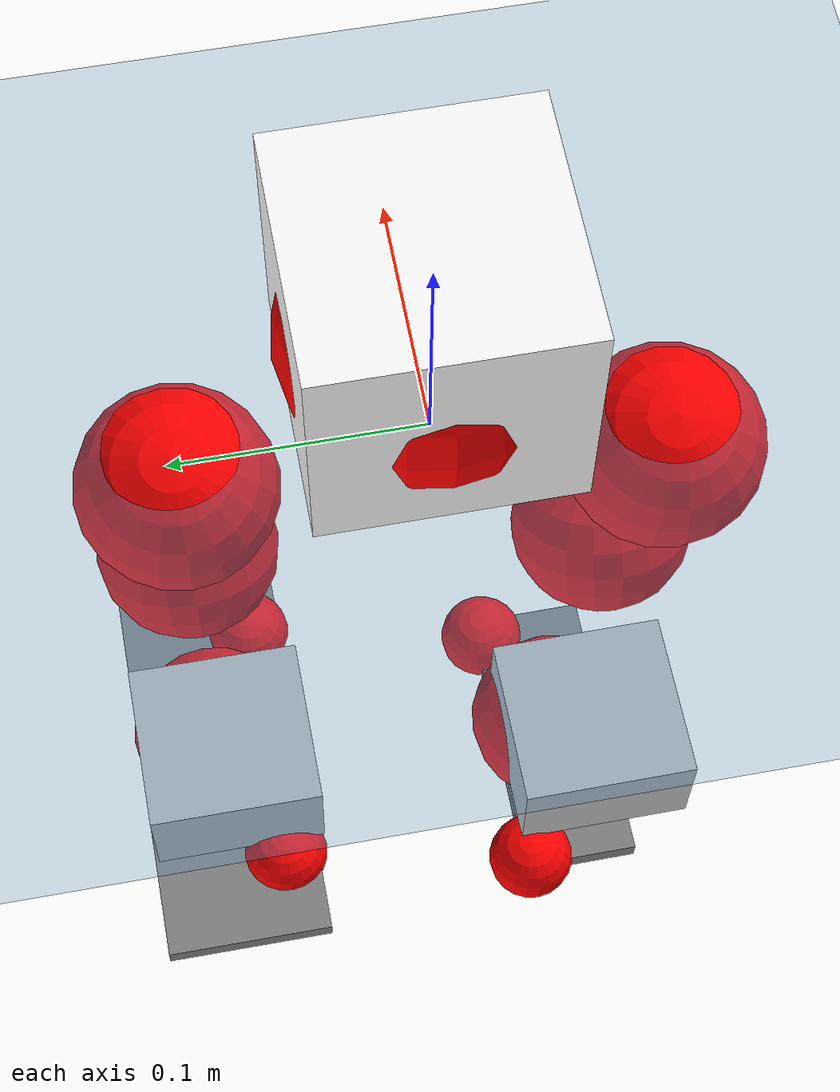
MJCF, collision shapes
<mujoco model="pi_12dof_release_v1">
  <compiler angle="radian" assetdir="assets" balanceinertia="true" inertiafromgeom="false"/>

  <option timestep="0.005" density="1.2" viscosity="2e-05"/>

  <size nkey="1"/>

  <visual>
    <quality shadowsize="8192"/>
    <map shadowclip="0.5"/>
  </visual>

  <default>
    <default class="/">
      <joint armature="0.01" damping="0.01" frictionloss="0.01"/>
      <geom contype="0" conaffinity="0" group="1" solref="-1000 -80"/>
      <site size="0.01 0.005 0.005" group="5"/>
      <general forcelimited="true" biastype="affine" gainprm="20" biasprm="0 -20 -0.5"/>
      <default class="foot">
        <geom size="0.0845 0.036 0.005" type="box" condim="6" group="4" priority="1" friction="0.9 0.2 0.2" solimp="0.015 1 0.005"/>
      </default>
      <default class="reward_collision_sphere">
        <geom group="5" rgba="1 0 0 1"/>
      </default>
    </default>
  </default>

  <asset>
    <texture type="skybox" colorspace="auto" name="//unnamed_texture_0" builtin="gradient" rgb1="0.95 0.95 0.95" rgb2="0.95 0.95 0.95" width="100" height="600"/>
    <texture type="2d" colorspace="auto" name="texplane" builtin="checker" rgb1="0.345 0.575 0.748" rgb2="0.345 0.575 0.748" markrgb="1 1 1" width="512" height="512"/>
    <material name="MatPlane" class="/" texture="texplane" texuniform="true" texrepeat="2 2" specular="0.9"/>
    <mesh name="baselink_1" class="/" file="baselink_1.STL"/>
    <mesh name="r_hip_pitch_link" class="/" file="r_hip_pitch_link.STL"/>
    <mesh name="r_hip_roll_link" class="/" file="r_hip_roll_link.STL"/>
    <mesh name="r_thigh_link" class="/" file="r_thigh_link.STL"/>
    <mesh name="r_calf_link" class="/" file="r_calf_link.STL"/>
    <mesh name="r_ankle_pitch_link" class="/" file="r_ankle_pitch_link.STL"/>
    <mesh name="r_ankle_roll_link" class="/" file="r_ankle_roll_link.STL"/>
    <mesh name="l_hip_pitch_link" class="/" file="l_hip_pitch_link.STL"/>
    <mesh name="l_hip_roll_link" class="/" file="l_hip_roll_link.STL"/>
    <mesh name="l_thigh_link" class="/" file="l_thigh_link.STL"/>
    <mesh name="l_calf_link" class="/" file="l_calf_link.STL"/>
    <mesh name="l_ankle_pitch_link" class="/" file="l_ankle_pitch_link.STL"/>
    <mesh name="l_ankle_roll_link" class="/" file="l_ankle_roll_link.STL"/>
  </asset>

  <worldbody>
    <geom name="floor" class="/" size="100 100 0.125" type="plane" group="0" material="MatPlane"/>
    <light name="toplight_shadow" class="/" pos="0 0 5" dir="0.0990148 0.0990148 -0.990148" type="directional" ambient="0.04 0.04 0.04" diffuse="0.55 0.55 0.55" specular="0.12 0.12 0.12"/>
    <light name="toplight_fill" class="/" pos="0 0 5" dir="0.0990148 0.0990148 -0.990148" type="directional" castshadow="false" ambient="0.04 0.04 0.04" diffuse="0.3 0.3 0.3" specular="0.08 0.08 0.08"/>
    <body name="trunk" pos="-0.000249865 0.00163856 -0.0017059" quat="1 -0.000832597 -0.00012563 -8.19404e-05">
      <inertial pos="0.00291038 0.00581218 0.0358795" quat="0.69681 0.00990552 0.00992044 0.717119" mass="2.29696" diaginertia="0.00653445 0.0234796 0.0030626"/>
      <joint name="//unnamed_joint_0" type="free"/>
      <geom name="//unnamed_geom_1" class="/" type="mesh" density="0" rgba="1 1 1 1" mesh="baselink_1"/>
      <geom name="//unnamed_geom_2" class="/" size="0.0504394 0.0504394 0.0504394" pos="0 0 0.0748407" type="box" rgba="1 1 1 1"/>
      <geom name="//unnamed_geom_3" class="reward_collision_sphere" size="0.0554833" pos="0 0 0.0654856"/>
      <site name="imu" class="/" pos="-0.0105387 0.00778164 0.00772568" size="0.0100879"/>
      <camera name="track" class="/" pos="0 -2.38941 0" quat="0.707107 0.707107 0 0" mode="trackcom"/>
      <camera name="ego_camera" class="/" pos="0.067211 0 0.168392" quat="-0.5 -0.5 0.5 0.5"/>
      <body name="r_hip_pitch_link" pos="-0.00261891 -0.0256118 -0.0302343" quat="0.992198 0.000373256 -0.124667 -0.000486683">
        <inertial pos="0.00139238 -0.0627409 0.00322143" quat="-0.00355327 0.695057 -0.0588593 0.716533" mass="0.394233" diaginertia="6.31613e-05 0.000244236 6.01848e-05"/>
        <joint name="r_hip_pitch_joint" class="/" pos="0 0 0" axis="-0.0108468 -0.999837 -0.0144355" stiffness="0.00583249" range="-1.77071 1.2376" armature="0.00908136" damping="0" frictionloss="0.00739183"/>
        <geom name="//unnamed_geom_4" class="/" type="mesh" density="0" rgba="0.75294 0.75294 0.75294 1" mesh="r_hip_pitch_link"/>
        <geom name="//unnamed_geom_5" class="/" size="0.000504394 0.000504394 0.000504394" type="box" rgba="0.75294 0.75294 0.75294 1"/>
        <body name="r_hip_roll_link" pos="-0.00426159 -0.067401 0.00175582" quat="0.999994 0.00319762 0.000237196 0.00103632">
          <inertial pos="0.00225301 -0.00751265 -0.0612353" quat="0.702733 -0.0803171 -0.0845391 0.701833" mass="0.396911" diaginertia="0.00020339 0.000624289 9.15081e-05"/>
          <joint name="r_hip_roll_joint" class="/" pos="0 0 0" axis="-1 0.000750344 -0.000123188" stiffness="0.00460821" range="-0.122718 0.468626" armature="0.0083926" damping="0" frictionloss="0.00903434"/>
          <geom name="//unnamed_geom_6" class="/" type="mesh" density="0" rgba="0.75294 0.75294 0.75294 1" mesh="r_hip_roll_link"/>
          <geom name="//unnamed_geom_7" class="/" size="0.000504394 0.000504394 0.000504394" type="box" rgba="0.75294 0.75294 0.75294 1"/>
          <geom name="//unnamed_geom_8" class="reward_collision_sphere" size="0.0403515"/>
          <body name="r_thigh_link" pos="-0.00373951 0.00514735 -0.0627175" quat="0.999999 -0.00067169 0.00131642 0.000833092">
            <inertial pos="0.00491553 0.00283832 -0.0413164" quat="0.74154 0.670905 -0.00188927 -0.000531698" mass="0.119618" diaginertia="7.29512e-05 0.000218737 4.10273e-05"/>
            <joint name="r_thigh_joint" class="/" pos="0 0 0" axis="-0.0207696 -0.00502532 -0.999772" stiffness="0.0242798" range="-0.181362 0.712765" armature="0.00808041" damping="0.0376178" frictionloss="0.00716791"/>
            <geom name="//unnamed_geom_9" class="/" type="mesh" density="0" rgba="0.75294 0.75294 0.75294 1" mesh="r_thigh_link"/>
            <geom name="//unnamed_geom_10" class="/" size="0.000504394 0.000504394 0.000504394" type="box" rgba="0.75294 0.75294 0.75294 1"/>
            <body name="r_calf_link" pos="0.00618342 0.00169883 -0.0655104" quat="0.947484 -0.000532474 0.319803 0.000758252">
              <inertial pos="-0.00367484 -8.42183e-05 -0.0654361" quat="0.999809 -0.00208055 -0.00687615 -0.0181539" mass="0.828065" diaginertia="0.00209999 0.0085079 0.000127981"/>
              <joint name="r_calf_joint" class="/" pos="0 0 0" axis="-0.0110152 -0.999428 0.031978" stiffness="0.00959759" range="-1.6463 0.600269" armature="0.00984665" damping="0" frictionloss="0.00758158"/>
              <geom name="//unnamed_geom_11" class="/" type="mesh" density="0" rgba="0.75294 0.75294 0.75294 1" mesh="r_calf_link"/>
              <geom name="//unnamed_geom_12" class="/" size="0.000504394 0.000504394 0.000504394" type="box" rgba="0.75294 0.75294 0.75294 1"/>
              <geom name="//unnamed_geom_13" class="reward_collision_sphere" size="0.0403515"/>
              <body name="r_ankle_pitch_link" pos="-0.000816892 0.00747416 -0.126943" quat="0.980095 -4.87477e-05 -0.19853 5.14112e-05">
                <inertial pos="0.00401008 0.00560656 -0.00529241" quat="0.00450237 0.702947 -0.00468634 0.711212" mass="0.186439" diaginertia="0.000183114 0.000546451 8.68809e-05"/>
                <joint name="r_ankle_pitch_joint" class="/" pos="0 0 0" axis="-0.00410461 -0.999929 0.0111926" range="-1.26361 0.605257" armature="0.00833263" damping="0.0143058" frictionloss="0.00779803"/>
                <geom name="//unnamed_geom_14" class="/" type="mesh" density="0" rgba="0.75294 0.75294 0.75294 1" mesh="r_ankle_pitch_link"/>
                <geom name="//unnamed_geom_15" class="/" size="0.0393427 0.0403515 0.0252197" type="box" rgba="0.75294 0.75294 0.75294 1"/>
                <body name="r_ankle_roll_link" pos="0.0640783 0.0121766 -0.00491086" quat="1 -0.000604613 0.000705861 -0.000291293">
                  <inertial pos="-0.0204184 -0.00120524 -0.0119001" quat="0.557297 0.433686 0.434521 0.559043" mass="0.48854" diaginertia="0.000592792 0.00224625 0.00018869"/>
                  <joint name="r_ankle_roll_joint" class="/" pos="0 0 0" axis="-0.999283 -0.0285653 -0.0248392" range="-0.28462 0.0884878" armature="0.00900355" damping="0" frictionloss="0.0109288"/>
                  <geom name="//unnamed_geom_16" class="/" type="mesh" density="0" rgba="0.75294 0.75294 0.75294 1" mesh="r_ankle_roll_link"/>
                  <geom name="//unnamed_geom_17" class="/" type="mesh" rgba="0.75294 0.75294 0.75294 1" mesh="r_ankle_roll_link"/>
                  <geom name="right_foot" class="foot" size="0.0669495 0.0270188 0.00489605" pos="-0.0457034 0 -0.0411624"/>
                  <geom name="//unnamed_geom_19" class="reward_collision_sphere" size="0.0403515" pos="-0.0448073 0 -0.0187102"/>
                  <geom name="//unnamed_geom_20" class="reward_collision_sphere" size="0.0201757" pos="0.0134422 0.0238941 -0.0374204"/>
                  <geom name="//unnamed_geom_21" class="reward_collision_sphere" size="0.0201757" pos="-0.107538 0.0238941 -0.0374204"/>
                  <site name="right_foot" class="foot" pos="-0.0457034 0 -0.0411624" size="0.0100879"/>
                </body>
              </body>
            </body>
          </body>
        </body>
      </body>
      <body name="l_hip_pitch_link" pos="0.00283225 0.0282834 -0.0330881" quat="0.992127 0.000273087 -0.125237 -0.000585796">
        <inertial pos="0.0034492 0.0621882 -0.00111379" quat="-0.0440762 0.704388 0.0202522 0.708156" mass="0.428417" diaginertia="7.10703e-05 0.000252136 7.06921e-05"/>
        <joint name="l_hip_pitch_joint" class="/" pos="0 0 0" axis="0.00110005 0.999981 -0.00612294" range="-1.19078 1.67064" armature="0.00964618" damping="0.0228746" frictionloss="0.0101941"/>
        <geom name="//unnamed_geom_22" class="/" type="mesh" density="0" rgba="0.75294 0.75294 0.75294 1" mesh="l_hip_pitch_link"/>
        <geom name="//unnamed_geom_23" class="/" size="0.000504394 0.000504394 0.000504394" type="box" rgba="0.75294 0.75294 0.75294 1"/>
        <body name="l_hip_roll_link" pos="0.00585893 0.0675635 0.00295296" quat="0.999997 0.00239073 0.000434501 -0.00102164">
          <inertial pos="0.00440612 -0.00700292 -0.0560651" quat="0.691256 -0.0785456 -0.0865416 0.713097" mass="0.430786" diaginertia="0.000194204 0.000673006 8.72348e-05"/>
          <joint name="l_hip_roll_joint" class="/" pos="0 0 0" axis="-0.999944 0.00937769 -0.00496891" stiffness="0.000231534" range="-0.512027 0.136269" armature="0.00699423" damping="0.00265163" frictionloss="0.0103341"/>
          <geom name="//unnamed_geom_24" class="/" type="mesh" density="0" rgba="0.75294 0.75294 0.75294 1" mesh="l_hip_roll_link"/>
          <geom name="//unnamed_geom_25" class="/" size="0.000504394 0.000504394 0.000504394" type="box" rgba="0.75294 0.75294 0.75294 1"/>
          <geom name="//unnamed_geom_26" class="reward_collision_sphere" size="0.0403515"/>
          <body name="l_thigh_link" pos="0.000422561 -0.00194278 -0.0668001" quat="1 2.20145e-05 0.00020304 -2.88512e-05">
            <inertial pos="0.00171573 -0.00489823 -0.0484123" quat="0.676031 0.736824 0.0064333 -0.00551871" mass="0.116523" diaginertia="7.63833e-05 0.000244295 4.42944e-05"/>
            <joint name="l_thigh_joint" class="/" pos="0 0 0" axis="-0.00305859 -0.00459023 -0.999985" range="-0.57517 0.327993" armature="0.0103038" damping="0.0223603" frictionloss="0.010878"/>
            <geom name="//unnamed_geom_27" class="/" type="mesh" density="0" rgba="0.75294 0.75294 0.75294 1" mesh="l_thigh_link"/>
            <geom name="//unnamed_geom_28" class="/" size="0.000504394 0.000504394 0.000504394" type="box" rgba="0.75294 0.75294 0.75294 1"/>
            <body name="l_calf_link" pos="0.00625404 0.00242034 -0.0634918" quat="0.947857 0.00273211 0.318676 0.00216574">
              <inertial pos="0.00244424 0.00223 -0.0700267" quat="0.999984 0.00316727 0.000283839 0.00467673" mass="0.839407" diaginertia="0.00204106 0.00869417 0.000113597"/>
              <joint name="l_calf_joint" class="/" pos="0 0 0" axis="0.00393249 0.999992 0.000681628" stiffness="0.0320404" range="-0.728183 1.62679" armature="0.00979948" damping="0.00805376" frictionloss="0.0110445"/>
              <geom name="//unnamed_geom_29" class="/" type="mesh" density="0" rgba="0.75294 0.75294 0.75294 1" mesh="l_calf_link"/>
              <geom name="//unnamed_geom_30" class="/" size="0.000504394 0.000504394 0.000504394" type="box" rgba="0.75294 0.75294 0.75294 1"/>
              <geom name="//unnamed_geom_31" class="reward_collision_sphere" size="0.0403515"/>
              <body name="l_ankle_pitch_link" pos="0.00178404 -0.00268348 -0.131901" quat="0.980001 -0.000216628 -0.198992 0.000141687">
                <inertial pos="0.00331524 0.0015399 -0.00328162" quat="-0.0130067 0.703909 0.00366011 0.710162" mass="0.189684" diaginertia="0.00017772 0.000541927 8.98557e-05"/>
                <joint name="l_ankle_pitch_joint" class="/" pos="0 0 0" axis="-0.00135202 0.999947 -0.0102054" range="-0.571323 1.29854" armature="0.012214" damping="0" frictionloss="0.0106524"/>
                <geom name="//unnamed_geom_32" class="/" type="mesh" density="0" rgba="0.75294 0.75294 0.75294 1" mesh="l_ankle_pitch_link"/>
                <geom name="//unnamed_geom_33" class="/" size="0.0393427 0.0403515 0.0252197" type="box" rgba="0.75294 0.75294 0.75294 1"/>
                <body name="l_ankle_roll_link" pos="0.0664396 0.00309824 0.000245065" quat="1 -0.000646703 0.000323387 -0.000212415">
                  <inertial pos="-0.0212178 0.001141 -0.0149998" quat="0.557733 0.431763 0.435601 0.559255" mass="0.517442" diaginertia="0.000663974 0.00249504 0.000196118"/>
                  <joint name="l_ankle_roll_joint" class="/" pos="0 0 0" axis="-0.999993 -0.00187724 0.00336556" range="-0.277136 0.156721" armature="0.00899596" damping="0.0319293" frictionloss="0.0094539"/>
                  <geom name="//unnamed_geom_34" class="/" type="mesh" density="0" rgba="0.75294 0.75294 0.75294 1" mesh="l_ankle_roll_link"/>
                  <geom name="//unnamed_geom_35" class="/" type="mesh" rgba="0.75294 0.75294 0.75294 1" mesh="l_ankle_roll_link"/>
                  <geom name="left_foot" class="foot" size="0.103558 0.039421 0.00478985" pos="-0.0457034 0 -0.0411624"/>
                  <geom name="//unnamed_geom_37" class="reward_collision_sphere" size="0.0403515" pos="-0.0448073 0 -0.0187102"/>
                  <geom name="//unnamed_geom_38" class="reward_collision_sphere" size="0.0201757" pos="0.0134422 -0.0238941 -0.0374204"/>
                  <geom name="//unnamed_geom_39" class="reward_collision_sphere" size="0.0201757" pos="-0.107538 -0.0238941 -0.0374204"/>
                  <site name="left_foot" class="foot" pos="-0.0457034 0 -0.0411624" size="0.0100879"/>
                </body>
              </body>
            </body>
          </body>
        </body>
      </body>
    </body>
  </worldbody>

  <contact>
    <pair class="/" geom1="floor" geom2="right_foot" name="//unnamed_contact_1"/>
    <pair class="/" geom1="floor" geom2="left_foot" name="//unnamed_contact_0"/>
  </contact>

  <actuator>
    <general name="r_hip_pitch_joint" class="/" joint="r_hip_pitch_joint" forcerange="-20.549 20.549" gainprm="20.059" biasprm="0 -20.059 -0.544547"/>
    <general name="r_hip_roll_joint" class="/" joint="r_hip_roll_joint" forcerange="-15.9924 15.9924" gainprm="20.059" biasprm="0 -20.059 -0.544547"/>
    <general name="r_thigh_joint" class="/" joint="r_thigh_joint" forcerange="-20.7905 20.7905" gainprm="20.059" biasprm="0 -20.059 -0.544547"/>
    <general name="r_calf_joint" class="/" joint="r_calf_joint" forcerange="-22.4835 22.4835" gainprm="20.059" biasprm="0 -20.059 -0.544547"/>
    <general name="r_ankle_pitch_joint" class="/" joint="r_ankle_pitch_joint" forcerange="-21.5171 21.5171" gainprm="20.059" biasprm="0 -20.059 -0.544547"/>
    <general name="r_ankle_roll_joint" class="/" joint="r_ankle_roll_joint" forcerange="-18.9322 18.9322" gainprm="20.059" biasprm="0 -20.059 -0.544547"/>
    <general name="l_hip_pitch_joint" class="/" joint="l_hip_pitch_joint" forcerange="-21.5722 21.5722" gainprm="20.059" biasprm="0 -20.059 -0.544547"/>
    <general name="l_hip_roll_joint" class="/" joint="l_hip_roll_joint" forcerange="-21.7325 21.7325" gainprm="20.059" biasprm="0 -20.059 -0.544547"/>
    <general name="l_thigh_joint" class="/" joint="l_thigh_joint" forcerange="-22.1474 22.1474" gainprm="20.059" biasprm="0 -20.059 -0.544547"/>
    <general name="l_calf_joint" class="/" joint="l_calf_joint" forcerange="-21.2286 21.2286" gainprm="20.059" biasprm="0 -20.059 -0.544547"/>
    <general name="l_ankle_pitch_joint" class="/" joint="l_ankle_pitch_joint" forcerange="-20.2443 20.2443" gainprm="20.059" biasprm="0 -20.059 -0.544547"/>
    <general name="l_ankle_roll_joint" class="/" joint="l_ankle_roll_joint" forcerange="-23.0511 23.0511" gainprm="20.059" biasprm="0 -20.059 -0.544547"/>
  </actuator>

  <sensor>
    <gyro site="imu" name="imu_angular_velocity"/>
    <velocimeter site="imu" name="imu_linear_velocity"/>
    <framelinvel objtype="site" objname="left_foot" name="left_foot_global_linear_velocity"/>
    <framelinvel objtype="site" objname="right_foot" name="right_foot_global_linear_velocity"/>
  </sensor>

  <keyframe>
    <key name="home" qpos="0 0 0.291 1 0 0 0 0.4 0 0 -0.8 0.4 0 -0.4 0 0 0.8 -0.4 0"/>
  </keyframe>
</mujoco>
